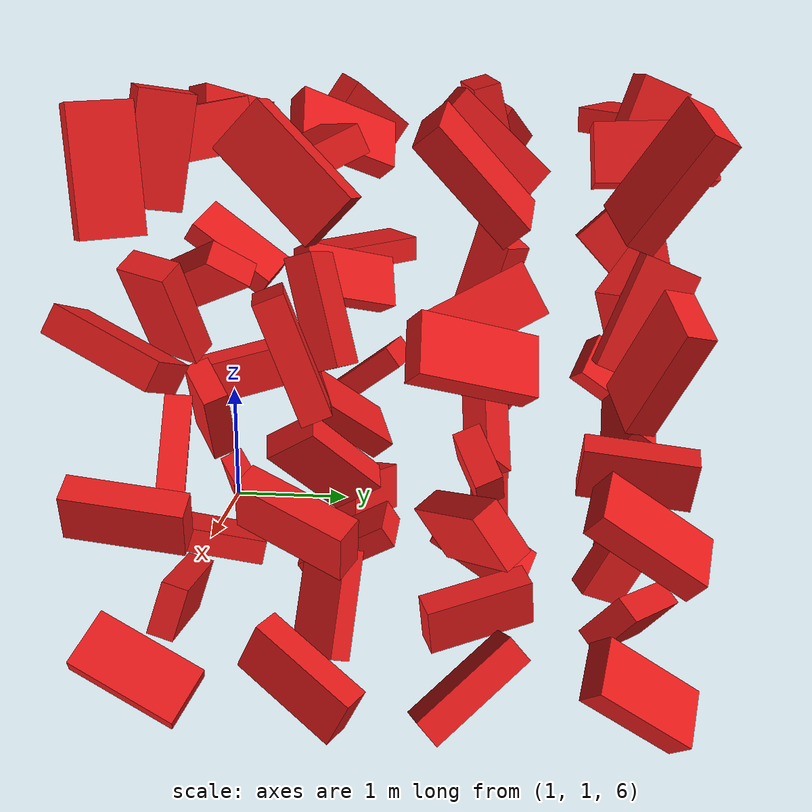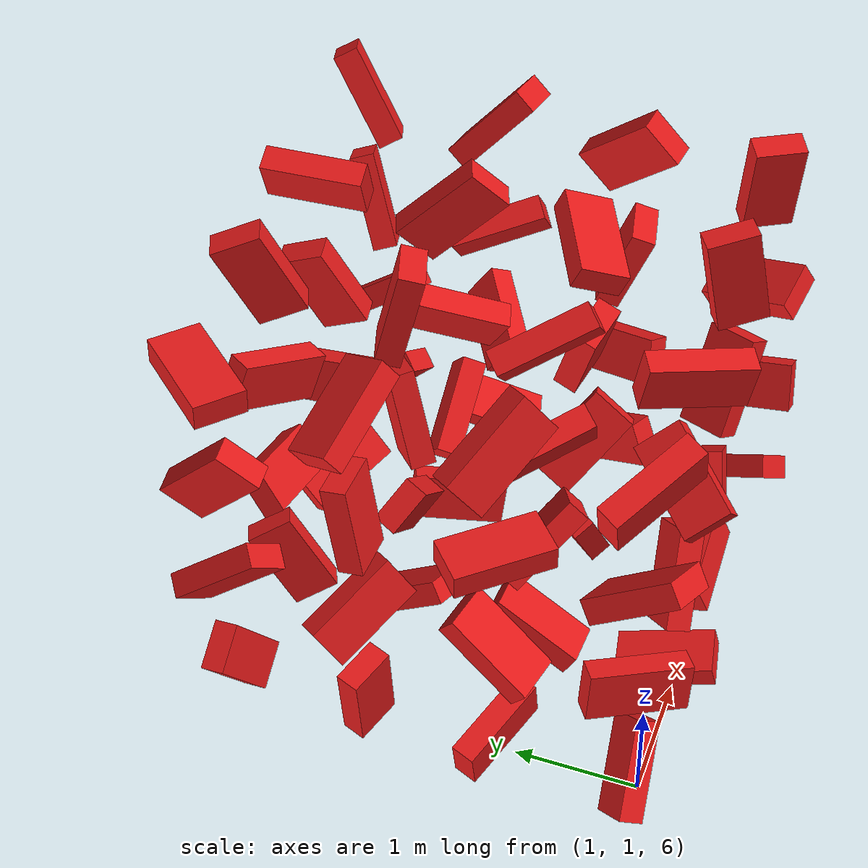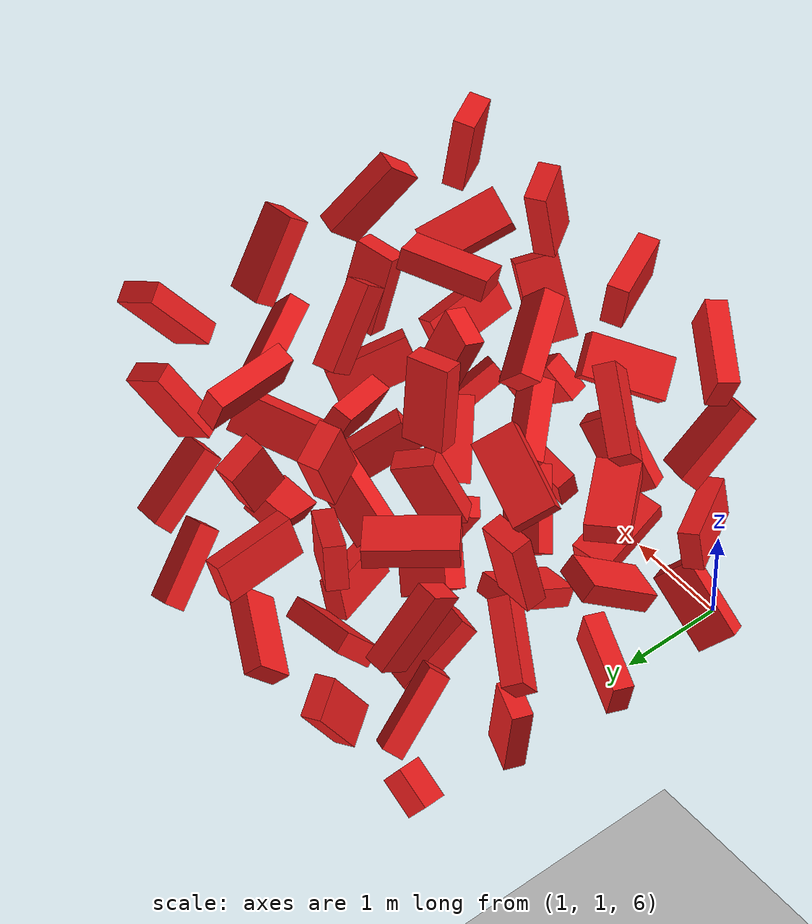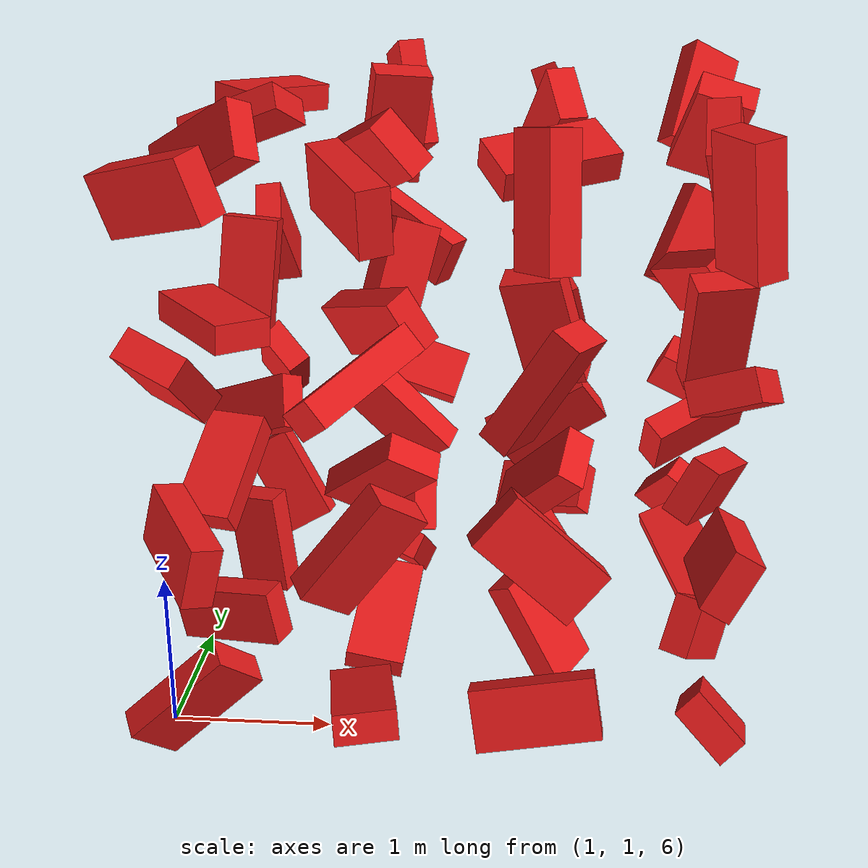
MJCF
<mujoco model="Humanoid and 100 objects">
    <compiler angle="degree"/>

    <option timestep="0.01" iterations="50" solver="PGS" jacobian="sparse" cone="elliptic" tolerance="1e-10"/>

    <size njmax="5000" nconmax="2000" nstack="1000000000"/>

    <default>
        <geom solimp=".9 .9 .01"/>

        <default class="object5">
			<geom type="box" material="geom" rgba=".9 .1 .1 1" size="0.400000 0.200000 0.100000"/>
        </default>
    </default>

    <asset>
        <texture type="skybox" builtin="gradient" width="128" height="128" rgb1=".4 .6 .8" rgb2="0 0 0"/>
        <texture name="texgeom" type="cube" builtin="flat" mark="cross" width="128" height="128"
            rgb1="0.6 0.6 0.6" rgb2="0.6 0.6 0.6" markrgb="1 1 1"/>
        <texture name="texplane" type="2d" builtin="checker" rgb1=".4 .4 .4" rgb2=".6 .6 .6"
            width="512" height="512"/>
        <material name='geom' texture="texgeom" texuniform="true"/>
        <material name='MatPlane' reflectance='0.3' texture="texplane" texrepeat="1 1" texuniform="true"/>
    </asset>

    <visual>
        <quality shadowsize="4096" offsamples="8"/>
        <map znear="0.1" force="0.05"/>
    </visual>

    <statistic extent="4"/>

    <worldbody>
        <light directional="true" diffuse=".8 .8 .8" pos="0 0 10" dir="0 0 -10"/>

        <geom pos="0 0 0" type="plane" size="3 3 .5" rgba=".7 .7 .7 1" material="MatPlane"/>
		<body pos="1.100023 1.100584 6.100088" quat="0.332258 0.137241 0.819929 -0.445517"> <freejoint/> <geom class="object5"/> </body>
		<body pos="1.100810 1.100134 7.200107" quat="0.412943 -0.263342 -0.575883 0.654590"> <freejoint/> <geom class="object5"/> </body>
		<body pos="1.100234 1.100182 8.300841" quat="-0.369583 -0.594513 0.711351 -0.062793"> <freejoint/> <geom class="object5"/> </body>
		<body pos="1.100562 1.100352 9.400053" quat="-0.713549 0.629655 -0.084299 0.295425"> <freejoint/> <geom class="object5"/> </body>
		<body pos="1.100942 2.200017 6.100260" quat="-0.062821 0.186039 0.707368 -0.679024"> <freejoint/> <geom class="object5"/> </body>
		<body pos="1.100404 2.200077 7.200202" quat="0.594417 0.241083 0.205678 -0.739083"> <freejoint/> <geom class="object5"/> </body>
		<body pos="1.100185 2.200025 8.300795" quat="-0.411405 -0.028009 -0.014211 -0.910911"> <freejoint/> <geom class="object5"/> </body>
		<body pos="1.100714 2.200000 9.400718" quat="-0.064713 0.335143 0.476306 -0.810324"> <freejoint/> <geom class="object5"/> </body>
		<body pos="1.100251 3.300093 6.100785" quat="-0.610776 0.422342 -0.543697 -0.391119"> <freejoint/> <geom class="object5"/> </body>
		<body pos="1.100077 3.300751 7.200146" quat="-0.298505 -0.111126 -0.817891 -0.479165"> <freejoint/> <geom class="object5"/> </body>
		<body pos="1.100958 3.300158 8.300716" quat="-0.478486 0.561740 0.513132 0.438400"> <freejoint/> <geom class="object5"/> </body>
		<body pos="1.100743 3.300086 9.400304" quat="-0.144394 0.151753 -0.257221 -0.943376"> <freejoint/> <geom class="object5"/> </body>
		<body pos="1.100356 4.400088 6.100420" quat="-0.576840 0.645335 -0.401656 -0.299115"> <freejoint/> <geom class="object5"/> </body>
		<body pos="1.100109 4.400950 7.200657" quat="0.514928 0.563193 -0.643626 -0.058380"> <freejoint/> <geom class="object5"/> </body>
		<body pos="1.100425 4.400488 8.300908" quat="0.690307 0.221553 0.626220 0.286773"> <freejoint/> <geom class="object5"/> </body>
		<body pos="1.100351 4.400224 9.400171" quat="-0.911518 -0.020765 -0.035596 -0.409190"> <freejoint/> <geom class="object5"/> </body>
		<body pos="2.200767 1.100755 6.100300" quat="-0.103113 -0.634690 -0.764219 0.050045"> <freejoint/> <geom class="object5"/> </body>
		<body pos="2.200768 1.100387 7.200643" quat="-0.397790 -0.179992 -0.779735 0.448752"> <freejoint/> <geom class="object5"/> </body>
		<body pos="2.200523 1.100387 8.300503" quat="-0.881099 0.197205 0.278523 -0.327414"> <freejoint/> <geom class="object5"/> </body>
		<body pos="2.200228 1.100366 9.400037" quat="-0.553123 -0.658572 0.332763 0.386791"> <freejoint/> <geom class="object5"/> </body>
		<body pos="2.200000 2.200666 6.100950" quat="0.241433 -0.700127 -0.662227 -0.113966"> <freejoint/> <geom class="object5"/> </body>
		<body pos="2.200144 2.200333 7.200278" quat="0.807334 -0.402623 -0.165283 -0.398482"> <freejoint/> <geom class="object5"/> </body>
		<body pos="2.200780 2.200710 8.300758" quat="-0.405879 -0.111300 -0.528110 -0.737546"> <freejoint/> <geom class="object5"/> </body>
		<body pos="2.200560 2.200399 9.400179" quat="0.725856 -0.484524 0.068140 -0.483452"> <freejoint/> <geom class="object5"/> </body>
		<body pos="2.200876 3.300084 6.100478" quat="-0.609094 0.335891 0.074760 0.714558"> <freejoint/> <geom class="object5"/> </body>
		<body pos="2.200676 3.300277 7.200466" quat="0.317811 0.237423 -0.787967 0.470886"> <freejoint/> <geom class="object5"/> </body>
		<body pos="2.200854 3.300677 8.300708" quat="-0.595781 -0.168607 -0.658517 0.427752"> <freejoint/> <geom class="object5"/> </body>
		<body pos="2.200186 3.300343 9.400080" quat="0.443497 -0.472035 0.390384 0.654289"> <freejoint/> <geom class="object5"/> </body>
		<body pos="2.200376 4.400804 6.100149" quat="0.699961 -0.008038 -0.632509 0.331545"> <freejoint/> <geom class="object5"/> </body>
		<body pos="2.200616 4.400607 7.200771" quat="-0.425035 0.891233 -0.087470 -0.131905"> <freejoint/> <geom class="object5"/> </body>
		<body pos="2.200499 4.400058 8.300443" quat="-0.621900 -0.710382 0.028014 0.328349"> <freejoint/> <geom class="object5"/> </body>
		<body pos="2.200137 4.400264 9.400718" quat="0.001610 -0.642915 -0.260599 -0.720240"> <freejoint/> <geom class="object5"/> </body>
		<body pos="3.300719 1.100273 6.100679" quat="0.592987 -0.801012 -0.057412 -0.058739"> <freejoint/> <geom class="object5"/> </body>
		<body pos="3.300407 1.100869 7.200875" quat="-0.318949 0.199831 0.720138 0.582872"> <freejoint/> <geom class="object5"/> </body>
		<body pos="3.300203 1.100184 8.300246" quat="0.856771 -0.154094 -0.468294 -0.151325"> <freejoint/> <geom class="object5"/> </body>
		<body pos="3.300588 1.100715 9.400178" quat="0.668886 -0.249739 0.688756 0.125846"> <freejoint/> <geom class="object5"/> </body>
		<body pos="3.300451 2.200479 6.100737" quat="0.183823 0.483849 -0.229805 0.824190"> <freejoint/> <geom class="object5"/> </body>
		<body pos="3.300960 2.200578 7.200325" quat="-0.857957 -0.193878 0.431419 0.200495"> <freejoint/> <geom class="object5"/> </body>
		<body pos="3.300719 2.200251 8.300053" quat="0.413638 0.456552 -0.663223 0.424969"> <freejoint/> <geom class="object5"/> </body>
		<body pos="3.300780 2.200792 9.400814" quat="0.233225 -0.001234 0.203441 -0.950903"> <freejoint/> <geom class="object5"/> </body>
		<body pos="3.300791 3.300268 6.100780" quat="0.633783 0.532175 -0.274361 -0.489729"> <freejoint/> <geom class="object5"/> </body>
		<body pos="3.300106 3.300803 7.200512" quat="-0.144560 0.232650 -0.514784 -0.812388"> <freejoint/> <geom class="object5"/> </body>
		<body pos="3.300638 3.300485 8.300103" quat="-0.741093 0.376970 -0.437282 0.342722"> <freejoint/> <geom class="object5"/> </body>
		<body pos="3.300547 3.300769 9.400729" quat="0.156670 -0.596080 -0.396090 0.680628"> <freejoint/> <geom class="object5"/> </body>
		<body pos="3.300560 4.400115 6.100595" quat="-0.197693 -0.169498 -0.888558 -0.377693"> <freejoint/> <geom class="object5"/> </body>
		<body pos="3.300363 4.400604 7.200674" quat="-0.448230 -0.549536 -0.592846 -0.381619"> <freejoint/> <geom class="object5"/> </body>
		<body pos="3.300035 4.400850 8.300728" quat="-0.181696 -0.738594 0.099505 0.641533"> <freejoint/> <geom class="object5"/> </body>
		<body pos="3.300363 4.400473 9.400449" quat="0.417841 0.606540 -0.548429 -0.395909"> <freejoint/> <geom class="object5"/> </body>
		<body pos="4.400980 1.100704 6.100401" quat="-0.389944 -0.532335 0.739231 0.134541"> <freejoint/> <geom class="object5"/> </body>
		<body pos="4.400553 1.100138 7.200684" quat="-0.323867 0.641295 -0.574493 0.392184"> <freejoint/> <geom class="object5"/> </body>
		<body pos="4.400444 1.100888 8.300849" quat="0.242800 0.768163 0.590843 -0.043335"> <freejoint/> <geom class="object5"/> </body>
		<body pos="4.400907 1.100325 9.400637" quat="0.724637 -0.159550 0.641530 0.194637"> <freejoint/> <geom class="object5"/> </body>
		<body pos="4.400090 2.200720 6.100127" quat="0.507226 -0.644971 -0.198413 0.536066"> <freejoint/> <geom class="object5"/> </body>
		<body pos="4.400515 2.200587 7.200701" quat="0.642111 -0.513383 -0.202961 0.531920"> <freejoint/> <geom class="object5"/> </body>
		<body pos="4.400496 2.200099 8.300395" quat="0.523699 -0.457587 0.347031 0.629224"> <freejoint/> <geom class="object5"/> </body>
		<body pos="4.400156 2.200905 9.400355" quat="0.315289 -0.704350 -0.235136 0.590927"> <freejoint/> <geom class="object5"/> </body>
		<body pos="4.400450 3.300105 6.100516" quat="-0.146272 0.523639 0.771803 0.329739"> <freejoint/> <geom class="object5"/> </body>
		<body pos="4.400592 3.300502 7.200861" quat="-0.251885 0.167879 -0.838777 0.452574"> <freejoint/> <geom class="object5"/> </body>
		<body pos="4.400395 3.300217 8.300163" quat="0.137914 -0.519547 -0.702756 0.466031"> <freejoint/> <geom class="object5"/> </body>
		<body pos="4.400187 3.300079 9.400091" quat="0.395071 0.659359 -0.607642 0.199842"> <freejoint/> <geom class="object5"/> </body>
		<body pos="4.400826 4.400089 6.100020" quat="0.601184 -0.025749 0.473147 0.643464"> <freejoint/> <geom class="object5"/> </body>
		<body pos="4.400138 4.400142 7.200874" quat="-0.371884 -0.642786 0.666625 -0.064335"> <freejoint/> <geom class="object5"/> </body>
		<body pos="4.400535 4.400986 8.300111" quat="0.195319 -0.525486 0.573495 0.597343"> <freejoint/> <geom class="object5"/> </body>
		<body pos="4.400555 4.400327 9.400913" quat="-0.140685 0.603681 -0.570950 -0.538325"> <freejoint/> <geom class="object5"/> </body>

    </worldbody>
</mujoco>
